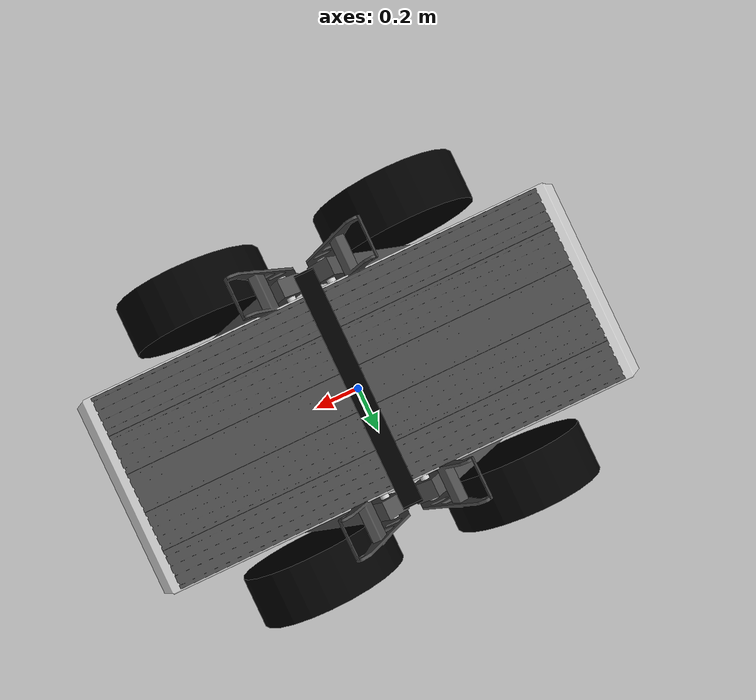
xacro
<?xml version="1.0" encoding="utf-8"?>
<robot name="agar" xmlns:xacro="http://www.ros.org/wiki/xacro">

    <xacro:arg name="robot_namespace" default="/"/>

    <xacro:property name="front_right_leg_fixture" value="front_right_leg_fixture" />
    <xacro:property name="rear_right_leg_fixture" value="rear_right_leg_fixture" />
    <xacro:property name="front_left_leg_fixture" value="front_left_leg_fixture" />
    <xacro:property name="rear_left_leg_fixture" value="rear_left_leg_fixture" />
    <xacro:property name="front_right_leg" value="front_right_leg" />
    <xacro:property name="rear_right_leg" value="rear_right_leg" />
    <xacro:property name="front_left_leg" value="front_left_leg" />
    <xacro:property name="rear_left_leg" value="rear_left_leg" />
    <xacro:property name="front_right_wheel" value="front_right" />
    <xacro:property name="rear_right_wheel" value="rear_right" />
    <xacro:property name="front_left_wheel" value="front_left" />
    <xacro:property name="rear_left_wheel" value="rear_left" />

    <xacro:include filename="$(find agar_description)/urdf/inertia.xacro" />
    <xacro:include filename="$(find agar_description)/urdf/materials.xacro" />
    <xacro:include filename="$(find agar_description)/urdf/leg_fixture_simulator.xacro" />
    <xacro:include filename="$(find agar_description)/urdf/leg_low_poly.xacro" />
    <xacro:include filename="$(find agar_description)/urdf/wheel.xacro" />
    <xacro:include filename="$(find agar_description)/urdf/wheel_low_poly.xacro" />
    <xacro:include filename="$(find agar_description)/urdf/stand.xacro" />
    <xacro:include filename="$(find agar_description)/urdf/gps_imu.xacro" />
    <xacro:include filename="$(find agar_description)/urdf/camera.xacro" />

    <xacro:include filename="$(find agar_description)/urdf/agar_control.xacro" />

    <!-- AgAR frame -->
    <link name="base_footprint">
        <visual>
            <origin xyz="0 0 0" rpy="0 0 1.67" />
            <geometry>
                <box size="0.001 0.001 0.001" />
            </geometry>
        </visual>
    </link>

    <link name="base_link">
        <visual>
            <origin xyz="0 0 -0.176" rpy="0 0 0" />
            <geometry>
                <mesh filename="file://$(find agar_description)/meshes/chassis.stl" />
            </geometry>
            <material name="light_grey" />
        </visual>
        <xacro:box_inertia m="600" l="0.3" w="1.9" h="0.61" xyz="0 0 0" rpy="0 0 0" />
        <collision>
            <origin xyz="0 0 -0.176" rpy="0 0 0 " />
            <geometry>
                <mesh filename="file://$(find agar_description)/meshes/chassis.stl" />
            </geometry>
        </collision>
    </link>
    <joint name="base_footprint_joint" type="fixed">
        <origin xyz="0 0 0.97943" rpy="0 0 0" />
        <parent link="base_footprint"/>
        <child link="base_link" />
    </joint>
    <gazebo reference="base_link">
        <material>Gazebo/Grey</material>
    </gazebo>

    <link name="raster">
        <visual>
            <origin xyz="0 0 0" rpy="0 0 0" />
            <geometry>
                <mesh filename="file://$(find agar_description)/meshes/raster.stl" />
            </geometry>
            <material name="grey" />
        </visual>
        <inertial>
            <origin xyz="0 0 0.01" rpy="0 0 0" />
            <mass value="16.76" />
            <inertia ixx="0.5031142899449066" ixy="0" ixz="0" iyy="2.7377808234150605" iyz="0" izz="3.240266613388063" />
        </inertial>
        <collision>
            <origin xyz="0 0 0" rpy="0 0 0" />
            <geometry>
                <mesh filename="file://$(find agar_description)/meshes/raster.stl" />
            </geometry>
        </collision>
    </link>
    <joint name="raster_joint" type="fixed">
        <origin xyz="0 0 0.176" rpy="0 0 0" />
        <parent link="base_link" />
        <child link="raster" />
    </joint>
    <gazebo reference="raster">
        <material>Gazebo/Grey</material>
    </gazebo>

    <!-- AgAR Legs fixtures -->
    <xacro:leg_fixture name="${front_right_leg_fixture}" type="a" xyz="0 0 0" rpy="0 0 0" ixyz="0.03 -0.06 0.13" irpy="0 0 0"
        ixx="0.05459239453300868" ixy="0" ixz="0" iyy="0.05970593665262832" iyz="0" izz="0.01507425976279013" jxyz="0.07 -0.307 -0.076" jrpy="0 0 0" />
    <xacro:leg_fixture name="${rear_right_leg_fixture}" type="b" xyz="0 0 0" rpy="0 0 0" ixyz="0.03 0.06 0.13" irpy="0 0 0"
        ixx="0.05459239565745024" ixy="0" ixz="0" iyy="0.05970593665262832" iyz="0" izz="0.015074260887231683" jxyz="-0.07 -0.307 -0.076" jrpy="0 0 ${pi}" />
    <xacro:leg_fixture name="${front_left_leg_fixture}" type="b" xyz="0 0 0" rpy="0 0 0" ixyz="0.03 -0.06 0.13" irpy="0 0 0"
        ixx="0.05459239565745024" ixy="0" ixz="0" iyy="0.05970593665262832" iyz="0" izz="0.015074260887231683" jxyz="0.07 0.307 -0.076" jrpy="0 0 0" />
    <xacro:leg_fixture name="${rear_left_leg_fixture}" type="a" xyz="0 0 0" rpy="0 0 0" ixyz="0.03 0.06 0.13" irpy="0 0 0"
        ixx="0.05459239453300868" ixy="0" ixz="0" iyy="0.05970593665262832" iyz="0" izz="0.01507425976279013" jxyz="-0.07 0.307 -0.076" jrpy="0 0 ${pi}" />

    <!-- AgAR Legs -->
    <xacro:leg_low_poly name="${front_right_leg}" type="a" xyz="0 0 0" rpy="0 0 ${pi}" ixyz="-0.58 0.02 0.08" irpy="0 0 0"
        ixx="1.1302317084114302" ixy="0" ixz="0" iyy="3.845526063904824" iyz="0" izz="3.271057725788208" jxyz="0.18 -0.075 -0.31" jrpy="0 ${pi/3} 0" />
    <xacro:leg_low_poly name="${rear_right_leg}" type="a" xyz="0 0 0" rpy="0 0 -${pi}" ixyz="-0.58 0.02 0.08" irpy="0 0 0"
        ixx="1.1302317084114302" ixy="0" ixz="0" iyy="3.845526063904824" iyz="0" izz="3.271057725788208" jxyz="0.18 0.075 -0.31" jrpy="0 ${pi/3} 0" />
    <xacro:leg_low_poly name="${front_left_leg}" type="a" xyz="0 0 0" rpy="0 0 ${pi}" ixyz="-0.58 0.02 0.08" irpy="0 0 0"
        ixx="1.1302317084114302" ixy="0" ixz="0" iyy="3.845526063904824" iyz="0" izz="3.271057725788208" jxyz="0.18 0.075 -0.31" jrpy="0 ${pi/3} 0" />
    <xacro:leg_low_poly name="${rear_left_leg}" type="a" xyz="0 0 0" rpy="0 0 -${pi}" ixyz="-0.58 0.02 0.08" irpy="0 0 0"
        ixx="1.1302317084114302" ixy="0" ixz="0" iyy="3.845526063904824" iyz="0" izz="3.271057725788208" jxyz="0.18 -0.075 -0.31" jrpy="0 ${pi/3} 0" />

    <!-- AgAR Wheels -->
    <xacro:wheel_low_poly name="${front_right_wheel}" type="a" xyz="0 0 0" rpy="${pi/2} 0 0" ixyz="0 0 0" irpy="0 0 0"
        ixx="0.419330921877652" ixy="0" ixz="0" iyy="0.7560959596612022" iyz="0" izz="0.419330921877652" jxyz="0.341 -0.18999 -0.0002" jrpy="0 0 0" />
    <xacro:wheel_low_poly name="${rear_right_wheel}" type="a" xyz="0 0 0" rpy="${pi/2} 0 0" ixyz="0 0 0" irpy="0 0 0"
        ixx="0.419330921877652" ixy="0" ixz="0" iyy="0.7560959596612022" iyz="0" izz="0.419330921877652" jxyz="0.341 0.18999 -0.0002" jrpy="0 0 ${pi}" />
    <xacro:wheel_low_poly name="${front_left_wheel}" type="a" xyz="0 0 0" rpy="${pi/2} 0 0" ixyz="0 0 0" irpy="0 0 0"
        ixx="0.419330921877652" ixy="0" ixz="0" iyy="0.7560959596612022" iyz="0" izz="0.419330921877652" jxyz="0.341 0.18999 -0.0002" jrpy="0 0 0" />
    <xacro:wheel_low_poly name="${rear_left_wheel}" type="a" xyz="0 0 0" rpy="${pi/2} 0 0" ixyz="0 0 0" irpy="0 0 0"
        ixx="0.419330921877652" ixy="0" ixz="0" iyy="0.7560959596612022" iyz="0" izz="0.419330921877652" jxyz="0.341 -0.18999 -0.0002" jrpy="0 0 ${pi}" />

</robot>

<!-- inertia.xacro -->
<robot name="agar" xmlns:xacro="http://www.ros.org/wiki/xacro">

    <xacro:macro name="box_inertia" params="m l w h xyz rpy">
        <inertial>
            <origin xyz="${xyz}" rpy="${rpy}" />
            <mass value="${m}" />
            <inertia
                ixx="${(m/12) * (h*h + l*l)}" ixy="0" ixz="0"
                iyy="${(m/12) * (w*w + l*l)}" iyz="0"
                izz="${(m/12) * (w*w + h*h)}" />
        </inertial>
    </xacro:macro>

</robot>

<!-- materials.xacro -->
<robot name="agar" xmlns:xacro="http://www.ros.org/wiki/xacro">
    <material name="grey">
        <color rgba="0.3 0.3 0.3 1.0" />
    </material>
    <material name="medium_grey">
        <color rgba="0.6 0.6 0.6 1.0" />
    </material>
    <material name="light_grey">
        <color rgba="0.8 0.8 0.8 1.0" />
    </material>
    <material name="black">
        <color rgba="0.0 0.0 0.0 1.0" />
    </material>
    <material name="white">
        <color rgba="1.0 1.0 1.0 1.0" />
    </material>
    <material name="red">
        <color rgba="1.0 0.0 0.0 1.0" />
    </material>
</robot>

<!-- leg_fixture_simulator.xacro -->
<robot name="agar" xmlns:xacro="http://www.ros.org/wiki/xacro">
    <xacro:macro name="leg_fixture" params="name type xyz rpy ixyz irpy ixx ixy ixz iyy iyz izz jxyz jrpy">
        <link name="${name}">
            <visual>
                <origin xyz="${xyz}" rpy="${rpy}" />
                <geometry>
                    <mesh filename="file://$(find agar_description)/meshes/leg_fixture_${type}.stl" />
                </geometry>
                <material name="grey" />
            </visual>
            <inertial>
                <origin xyz="${ixyz}" rpy="${irpy}" />
                <mass value="3.43" />
                <inertia ixx="${ixx}" ixy="${ixy}" ixz="${ixz}" iyy="${iyy}" iyz="${iyz}" izz="${izz}" />
            </inertial>
            <collision>
                <origin xyz="${xyz}" rpy="${rpy}" />
                <geometry>
                    <mesh filename="file://$(find agar_description)/meshes/leg_fixture_${type}.stl" />
                </geometry>
            </collision>
        </link>
        <joint name="${name}_joint" type="fixed">
            <origin xyz="${jxyz}" rpy="${jrpy}" />
            <parent link="base_link" />
            <child link="${name}" />
        </joint>
        <gazebo reference="${name}">
            <material>Gazebo/DarkGrey</material>
        </gazebo>
    </xacro:macro>
</robot>

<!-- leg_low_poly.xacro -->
<robot name="agar" xmlns:xacro="http://www.ros.org/wiki/xacro">
    <xacro:macro name="leg_low_poly" params="name type xyz rpy ixyz irpy ixx ixy ixz iyy iyz izz jxyz jrpy">
        <link name="${name}">
            <visual>
                <origin xyz="${xyz}" rpy="${rpy}" />
                <geometry>
                     <box size="0.8 0.06 0.08" />
                </geometry>
                <material name="grey" />
            </visual>
            <inertial>
                <origin xyz="${ixyz}" rpy="${irpy}" />
                <mass value="55.56" />
                <inertia ixx="${ixx}" ixy="${ixy}" ixz="${ixz}" iyy="${iyy}" iyz="${iyz}" izz="${izz}" />
            </inertial>
            <collision>
                <origin xyz="${xyz}" rpy="${rpy}" />
                <geometry>
                     <box size="0.8 0.06 0.08" />
                </geometry>
            </collision>
        </link>
        <joint name="${name}_joint" type="fixed">
            <origin xyz="${jxyz}" rpy="${jrpy}" />
            <parent link="${name}_fixture" />
            <child link="${name}" />
        </joint>
        <gazebo reference="${name}">
            <material>Gazebo/DarkGrey</material>
        </gazebo>
    </xacro:macro>
</robot>

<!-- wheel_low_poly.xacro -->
<robot name="agar"
    xmlns:xacro="http://www.ros.org/wiki/xacro">
    <xacro:macro name="wheel_low_poly" params="name type xyz rpy ixyz irpy ixx ixy ixz iyy iyz izz jxyz jrpy">
        <link name="${name}_wheel">
            <visual>
                <origin xyz="${xyz}" rpy="${rpy}" />
                <geometry>
                    <cylinder length="0.2" radius="0.3"/>
                </geometry>
                <material name="black" />
            </visual>
            <inertial>
                <origin xyz="${ixyz}" rpy="${irpy}" />
                <mass value="12" />
                <inertia ixx="${ixx}" ixy="${ixy}" ixz="${ixz}" iyy="${iyy}" iyz="${iyz}" izz="${izz}" />
            </inertial>
            <collision>
                <origin xyz="${xyz}" rpy="${rpy}" />
                <geometry>
                    <cylinder length="0.2" radius="0.3"/>
                </geometry>
            </collision>
        </link>

        <joint name="${name}_wheel_joint" type="continuous">
                <origin xyz="${jxyz}" rpy="${jrpy}" />
                <parent link="${name}_leg"/>
            <child link="${name}_wheel" />
            <axis xyz="0 1 0" />
        </joint>
        <gazebo reference="${name}_wheel">
            <material>Gazebo/Black</material>
            <mu1 value="0.1"/>
            <mu2 value="0.1"/>
        </gazebo>
        <transmission name="${name}_wheel_trans">
            <type>transmission_interface/SimpleTransmission</type>
            <joint name="${name}_wheel_joint">
                <hardwareInterface>hardware_interface/VelocityJointInterface</hardwareInterface>
            </joint>
            <actuator name="${name}_wheel_motor">
                <mechanicalReduction>0</mechanicalReduction>
            </actuator>
        </transmission>
        <gazebo reference="${name}_wheel">
            <material>Gazebo/Black</material>
        </gazebo>
    </xacro:macro>
</robot>

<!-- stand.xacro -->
<robot xmlns:xacro="http://www.ros.org/wiki/xacro">
    <link name="top_stand">
        <visual>
            <origin xyz="0 0 0" rpy="0 0 0" />
            <geometry>
                <box size="0.05 0.60 0.01" />
            </geometry>
            <material name="black" />
        </visual>
        <xacro:box_inertia m="1" l="0.05" w="0.6" h="0.01" xyz="0 0 0" rpy="0 0 0" />
        <collision>
            <origin xyz="0 0 0" rpy="0 0 0" />
            <geometry>
                <box size="0.05 0.60 0.01" />
            </geometry>
        </collision>
    </link>
    <joint name="top_stand_joint" type="fixed">
        <origin xyz="0 0 0.575" rpy="0 0 0" />
        <parent link="base_link" />
        <child link="top_stand" />
    </joint>
    <gazebo reference="top_stand">
        <material>Gazebo/Grey</material>
    </gazebo>

    <link name="left_stand">
        <visual>
            <origin xyz="0 0 0" rpy="0 0 0" />
            <geometry>
                <box size="0.05 0.01 0.4" />
            </geometry>
            <material name="black" />
        </visual>
        <xacro:box_inertia m="1" l="0.05" w="0.01" h="0.4" xyz="0 0 0" rpy="0 0 0" />
        <collision>
            <origin xyz="0 0 0" rpy="0 0 0" />
            <geometry>
                <box size="0.05 0.01 0.4" />
            </geometry>
        </collision>
    </link>
    <joint name="left_stand_joint" type="fixed">
        <origin xyz="0 0.3 -0.20" rpy="0 0 0" />
        <parent link="top_stand" />
        <child link="left_stand" />
    </joint>
    <gazebo reference="left_stand">
        <material>Gazebo/Grey</material>
    </gazebo>

    <link name="right_stand">
        <visual>
            <origin xyz="0 0 0" rpy="0 0 0" />
            <geometry>
                <box size="0.05 0.01 0.4" />
            </geometry>
            <material name="black" />
        </visual>
        <xacro:box_inertia m="1" l="0.05" w="0.01" h="0.4" xyz="0 0 0" rpy="0 0 0" />
        <collision>
            <origin xyz="0 0 0" rpy="0 0 0" />
            <geometry>
                <box size="0.05 0.01 0.4" />
            </geometry>
        </collision>
    </link>
    <joint name="right_stand_joint" type="fixed">
        <origin xyz="0 -0.3 -0.20" rpy="0 0 0" />
        <parent link="top_stand" />
        <child link="right_stand" />
    </joint>
    <gazebo reference="right_stand">
        <material>Gazebo/Grey</material>
    </gazebo>

</robot>

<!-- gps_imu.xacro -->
<robot xmlns:xacro="http://www.ros.org/wiki/xacro">

    <link name="imu_link" />
    <joint name="imu_joint" type="fixed">
        <parent link="base_link"/>
        <child link="imu_link"/>
        <origin xyz="0 0 0.1" rpy="0 0 0"/>
    </joint>
    <gazebo reference="imu_link">
        <sensor name="imu_sensor" type="imu">
            <always_on>true</always_on>
            <update_rate>20</update_rate>
            <visualize>true</visualize>
            <topic>imu/data</topic>
            <ignition_frame_id>imu_link</ignition_frame_id>
        </sensor>
    </gazebo>

    <link name="gps_link" />
    <joint name="gps_link_joint" type="fixed">
        <origin xyz="0.0 0 0.4" rpy="0 0 0" />
        <parent link="base_link" />
        <child link="gps_link" />
    </joint>
    <gazebo reference="gps_link">
        <sensor name="GazeboNavSat" type="navsat">
            <always_on>true</always_on>
            <update_rate>25.0</update_rate>
            <visualize>true</visualize>
            <topic>gps/fix</topic>
            <ignition_frame_id>gps_link</ignition_frame_id>
        </sensor>
    </gazebo>

</robot>

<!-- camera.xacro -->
<robot xmlns:xacro="http://www.ros.org/wiki/xacro">
    <link name="rgbd_camera_link" />
    <joint name="rgbd_camera_link_joint" type="fixed">
        <parent link="top_stand" />
        <child link="rgbd_camera_link" />
        <origin xyz="0.60 0 -0.05" rpy="0 0 0" />
    </joint>
    <gazebo reference="rgbd_camera_link">
        <sensor name="camera_sensor_rgbd" type="rgbd_camera">
            <always_on>true</always_on>
            <update_rate>10.0</update_rate>
            <visualize>false</visualize>
            <camera name="rgbd_camera">
                <horizontal_fov>1.0547</horizontal_fov>
                <image>
                    <width>1280</width>
                    <height>720</height>
                </image>
                <clip>
                    <near>0.3</near>
                    <far>30</far>
                </clip>
                <noise>
                    <type>gaussian</type>
                    <mean>0</mean>
                    <stddev>0.01</stddev>
                </noise>
            </camera>
            <frame_name>rgbd_camera_frame</frame_name>
            <frame_id>rgbd_camera_link</frame_id>
            <topic>camera/rgbd/image_raw</topic>
            <ignition_frame_id>rgbd_camera_link</ignition_frame_id>
        </sensor>
    </gazebo>
</robot>
